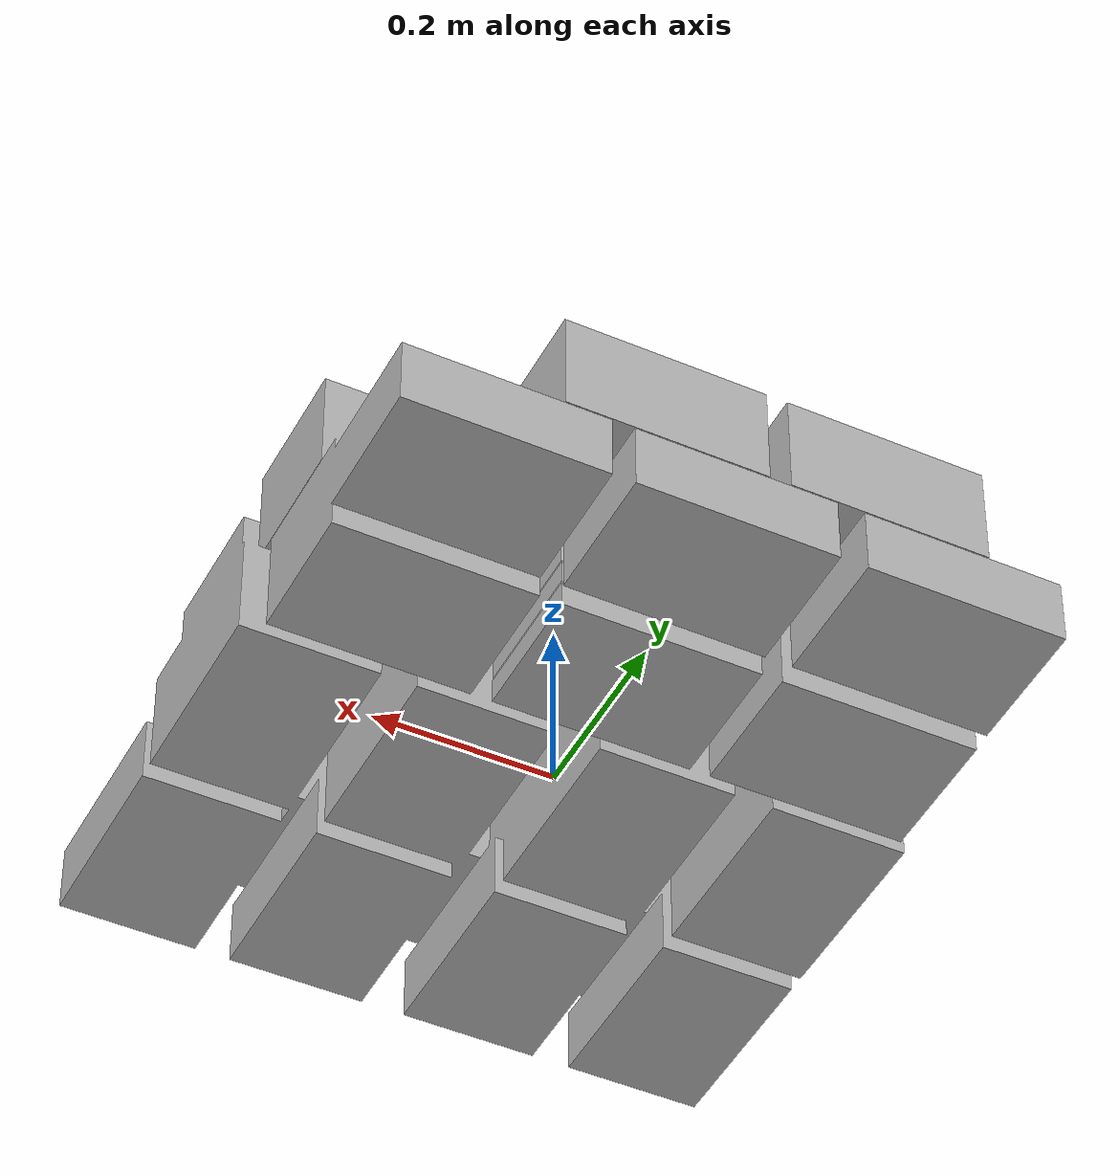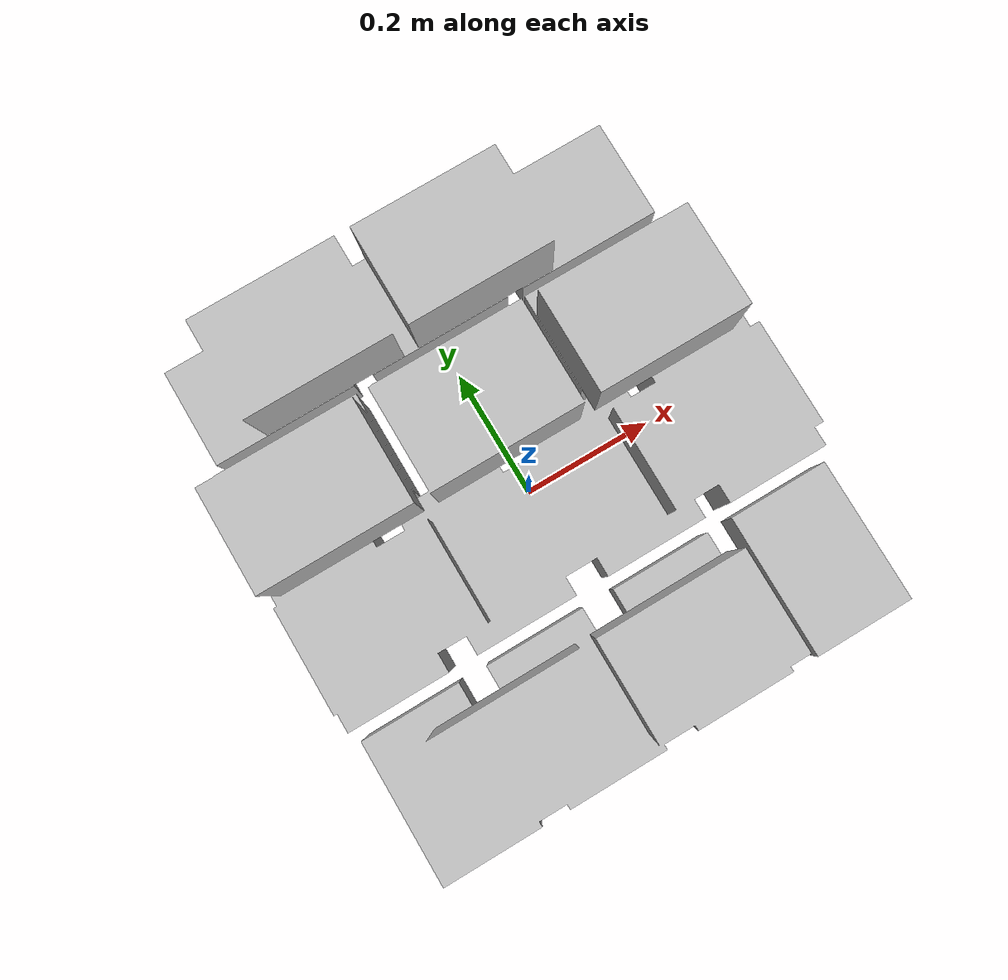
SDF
<?xml version="1.0" ?>
<sdf version="1.6">
  <model name="aws_robomaker_retail_BookF_01">
    <link name="link">
      <inertial>
        <mass>10</mass>
        <inertia>
          <ixx>0.583817125</ixx>
          <ixy>0</ixy>
          <ixz>0</ixz>
          <iyy>0.50292533</iyy>
          <iyz>0</iyz>
          <izz>0.993040</izz>
        </inertia>
      </inertial>
      <collision name="collision">
        <geometry>
          <mesh>
            <uri>file://models/aws_robomaker_retail_BookF_01/meshes/aws_BookF_01_collision.DAE</uri>
            <scale>1 1 1</scale>
          </mesh>
        </geometry>
      </collision>
      <visual name="visual">
	    <geometry>
          <mesh>
            <uri>file://models/aws_robomaker_retail_BookF_01/meshes/aws_BookF_01_visual.DAE</uri>
          </mesh>
        </geometry>
        <meta>
          <layer>1</layer>
        </meta>
      </visual>
    </link>
	<static>1</static>
  </model>
</sdf>
